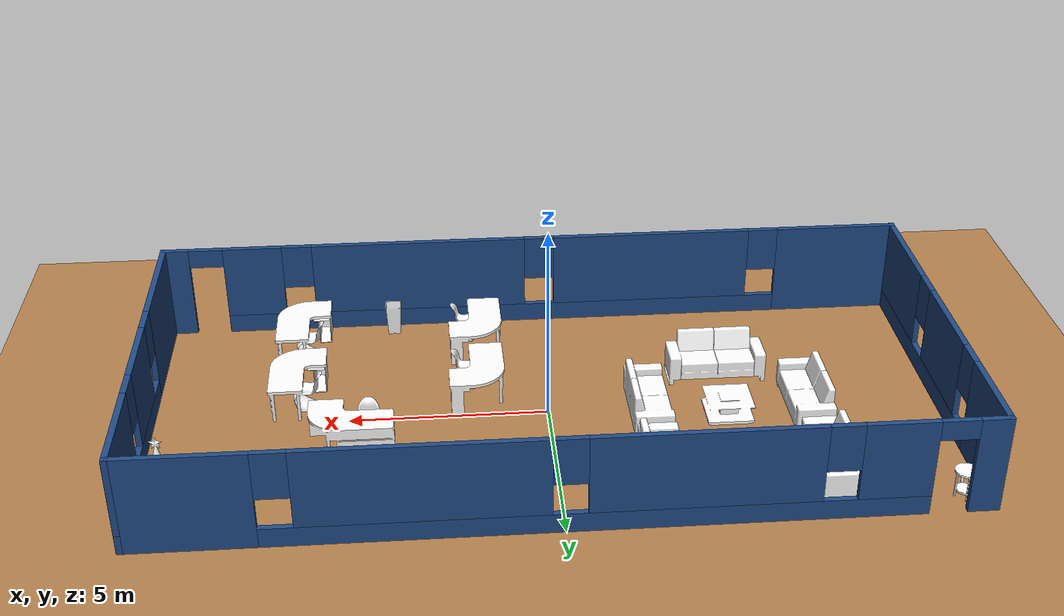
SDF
<sdf version="1.6">
 <world name="default">
  <light name="sun" type="directional">
   <pose>0 0 30 0 -0 0</pose>
   <diffuse>0.8 0.8 0.8 1</diffuse>
   <specular>0.2 0.2 0.2 1</specular>
   <direction>-0.5 0.1 -0.9</direction>
  </light>
  <model name="ground_plane">
   <static>1</static>
   <link name="link">
    <collision name="collision">
     <geometry><plane><normal>0 0 1</normal><size>20 10</size></plane></geometry>
     <surface>
      <contact><collide_bitmask>65535</collide_bitmask></contact>
      <friction><ode><mu>100</mu><mu2>50</mu2></ode></friction>
     </surface>
    </collision>
    <visual name="visual">
     <cast_shadows>0</cast_shadows>
     <geometry><plane><normal>0 0 1</normal><size>20 10</size></plane></geometry>
     <material>
      <script><uri>file://media/materials/scripts/gazebo.material</uri><name>Gazebo/Wood</name></script>
     </material>
    </visual>
   </link>
  </model>
  <model name="desk">
   <pose>0.993359 -4.60158 0 0 -0 1.57785</pose>
   <static>1</static>
   <link name="link">
    <visual name="visual">
     <geometry>
      <mesh><scale>0.788149 0.788149 0.788149</scale><uri>model://desk/meshes/desk.dae</uri></mesh>
     </geometry>
     <material>
      <script>
       <uri>model://desk/materials/textures</uri>
       <uri>model://desk/materials/scripts</uri>
       <name>DeskTexture</name>
      </script>
      <ambient>1 1 1 1</ambient>
      <diffuse>1 1 1 1</diffuse>
      <specular>1 1 1 1</specular>
      <emissive>0 0 0 1</emissive>
     </material>
    </visual>
   </link>
  </model>
  <model name="silladesk">
   <pose>2.29763 -3.32831 0 0 0 -1.36963</pose>
   <static>1</static>
   <link name="link">
    <visual name="visual">
     <geometry>
      <mesh><scale>1.73835 1.73835 1.73835</scale><uri>model://silladesk/meshes/silladesk.dae</uri></mesh>
     </geometry>
     <material>
      <script>
       <uri>model://silladesk/materials/textures</uri>
       <uri>model://silladesk/materials/scripts</uri>
       <name>SilladeskTexture</name>
      </script>
      <ambient>1 1 1 1</ambient>
      <diffuse>1 1 1 1</diffuse>
      <specular>1 1 1 1</specular>
      <emissive>0 0 0 1</emissive>
     </material>
    </visual>
   </link>
  </model>
  <model name="reciclaje">
   <pose>3.66144 -4.27861 0 0 -0 0</pose>
   <static>1</static>
   <link name="link">
    <visual name="visual">
     <geometry>
      <mesh><scale>1.2699 1.2699 1.2699</scale><uri>model://reciclaje/meshes/reciclaje.dae</uri></mesh>
     </geometry>
     <material>
      <script>
       <uri>model://reciclaje/materials/textures</uri>
       <uri>model://reciclaje/materials/scripts</uri>
       <name>ReciclajeTexture</name>
      </script>
      <ambient>1 1 1 1</ambient>
      <diffuse>1 1 1 1</diffuse>
      <specular>1 1 1 1</specular>
      <emissive>0 0 0 1</emissive>
     </material>
    </visual>
   </link>
  </model>
  <model name="arbol">
   <pose>8.22368 4.75667 -0.004271 0 -0 0</pose>
   <static>1</static>
   <link name="link">
    <visual name="visual">
     <geometry>
      <mesh><scale>0.221922 0.221922 0.221922</scale><uri>model://arbol/meshes/arbol.dae</uri></mesh>
     </geometry>
     <material>
      <script>
       <uri>model://arbol/materials/textures</uri>
       <uri>model://arbol/materials/scripts</uri>
       <name>ArbolTexture</name>
      </script>
      <ambient>1 1 1 1</ambient>
      <diffuse>1 1 1 1</diffuse>
      <specular>1 1 1 1</specular>
      <emissive>0 0 0 1</emissive>
     </material>
    </visual>
   </link>
  </model>
  <model name="mesa">
   <pose>-9.35089 4.36935 0 0 -0 0</pose>
   <static>1</static>
   <link name="link">
    <visual name="visual">
     <geometry>
      <mesh><scale>1.51924 1.51924 1.51924</scale><uri>model://mesa/meshes/mesa.dae</uri></mesh>
     </geometry>
     <material>
      <script>
       <uri>model://mesa/materials/textures</uri>
       <uri>model://mesa/materials/scripts</uri>
       <name>MesaTexture</name>
      </script>
      <ambient>1 1 1 1</ambient>
      <diffuse>1 1 1 1</diffuse>
      <specular>1 1 1 1</specular>
      <emissive>0 0 0 1</emissive>
     </material>
    </visual>
   </link>
  </model>
  <model name="centro">
   <pose>-4.50735 0.435197 0 0 -0 0</pose>
   <static>1</static>
   <link name="link">
    <visual name="visual">
     <geometry>
      <mesh><scale>1.15593 1.15593 1.15593</scale><uri>model://centro/meshes/centro.dae</uri></mesh>
     </geometry>
     <material>
      <script>
       <uri>model://centro/materials/textures</uri>
       <uri>model://centro/materials/scripts</uri>
       <name>CentroTexture</name>
      </script>
      <ambient>1 1 1 1</ambient>
      <diffuse>1 1 1 1</diffuse>
      <specular>1 1 1 1</specular>
      <emissive>0 0 0 1</emissive>
     </material>
    </visual>
   </link>
  </model>
  <model name="rycsv_proyecto">
   <pose>-0.004936 0.00977 0 0 -0 0</pose>
   <link name="Wall_0">
    <pose>0 -4.925 0 0 -0 0</pose>
    <visual name="Wall_0_Visual_0">
     <pose>-8.35877 0 1.25 0 -0 0</pose>
     <geometry><box><size>3.28246 0.15 2.5</size></box></geometry>
     <material>
      <script><uri>file://media/materials/scripts/gazebo.material</uri><name>Gazebo/Grey</name></script>
      <ambient>0.12549 0.290196 0.529412 1</ambient>
     </material>
     <meta><layer>0</layer></meta>
    </visual>
    <visual name="Wall_0_Visual_1">
     <pose>9.63399 0 1.25 0 -0 0</pose>
     <geometry><box><size>0.732028 0.15 2.5</size></box></geometry>
     <material>
      <script><uri>file://media/materials/scripts/gazebo.material</uri><name>Gazebo/Grey</name></script>
      <ambient>0.12549 0.290196 0.529412 1</ambient>
     </material>
     <meta><layer>0</layer></meta>
    </visual>
    <visual name="Wall_0_Visual_2">
     <pose>0.825216 0 0.25 0 -0 0</pose>
     <geometry><box><size>15.0855 0.15 0.5</size></box></geometry>
     <material>
      <script><uri>file://media/materials/scripts/gazebo.material</uri><name>Gazebo/Grey</name></script>
      <ambient>0.12549 0.290196 0.529412 1</ambient>
     </material>
     <meta><layer>0</layer></meta>
    </visual>
    <visual name="Wall_0_Visual_3">
     <pose>-3.23192 0 1.5 0 -0 0</pose>
     <geometry><box><size>5.37125 0.15 2</size></box></geometry>
     <material>
      <script><uri>file://media/materials/scripts/gazebo.material</uri><name>Gazebo/Grey</name></script>
      <ambient>0.12549 0.290196 0.529412 1</ambient>
     </material>
     <meta><layer>0</layer></meta>
    </visual>
    <visual name="Wall_0_Visual_4">
     <pose>3.12553 0 1.5 0 -0 0</pose>
     <geometry><box><size>5.74365 0.15 2</size></box></geometry>
     <material>
      <script><uri>file://media/materials/scripts/gazebo.material</uri><name>Gazebo/Grey</name></script>
      <ambient>0.12549 0.290196 0.529412 1</ambient>
     </material>
     <meta><layer>0</layer></meta>
    </visual>
    <visual name="Wall_0_Visual_5">
     <pose>7.58266 0 1.5 0 -0 0</pose>
     <geometry><box><size>1.57062 0.15 2</size></box></geometry>
     <material>
      <script><uri>file://media/materials/scripts/gazebo.material</uri><name>Gazebo/Grey</name></script>
      <ambient>0.12549 0.290196 0.529412 1</ambient>
     </material>
     <meta><layer>0</layer></meta>
    </visual>
    <visual name="Wall_0_Visual_6">
     <pose>-6.31754 0 1.9 0 -0 0</pose>
     <geometry><box><size>0.8 0.15 1.2</size></box></geometry>
     <material>
      <script><uri>file://media/materials/scripts/gazebo.material</uri><name>Gazebo/Grey</name></script>
      <ambient>0.12549 0.290196 0.529412 1</ambient>
     </material>
     <meta><layer>0</layer></meta>
    </visual>
    <visual name="Wall_0_Visual_7">
     <pose>-0.146295 0 1.9 0 -0 0</pose>
     <geometry><box><size>0.8 0.15 1.2</size></box></geometry>
     <material>
      <script><uri>file://media/materials/scripts/gazebo.material</uri><name>Gazebo/Grey</name></script>
      <ambient>0.12549 0.290196 0.529412 1</ambient>
     </material>
     <meta><layer>0</layer></meta>
    </visual>
    <visual name="Wall_0_Visual_8">
     <pose>6.39735 0 1.9 0 -0 0</pose>
     <geometry><box><size>0.8 0.15 1.2</size></box></geometry>
     <material>
      <script><uri>file://media/materials/scripts/gazebo.material</uri><name>Gazebo/Grey</name></script>
      <ambient>0.12549 0.290196 0.529412 1</ambient>
     </material>
     <meta><layer>0</layer></meta>
    </visual>
    <visual name="Wall_0_Visual_9">
     <pose>8.81797 0 2.25 0 -0 0</pose>
     <geometry><box><size>0.9 0.15 0.5</size></box></geometry>
     <material>
      <script><uri>file://media/materials/scripts/gazebo.material</uri><name>Gazebo/Grey</name></script>
      <ambient>0.12549 0.290196 0.529412 1</ambient>
     </material>
     <meta><layer>0</layer></meta>
    </visual>
   </link>
   <link name="Wall_1">
    <pose>9.925 0 0 0 -0 1.5708</pose>
    <visual name="Wall_1_Visual_0">
     <pose>-3.29565 0 1.25 0 -0 0</pose>
     <geometry><box><size>3.40869 0.15 2.5</size></box></geometry>
     <material>
      <script><uri>file://media/materials/scripts/gazebo.material</uri><name>Gazebo/Grey</name></script>
      <ambient>0.12549 0.290196 0.529412 1</ambient>
     </material>
     <meta><layer>0</layer></meta>
    </visual>
    <visual name="Wall_1_Visual_1">
     <pose>1.70435 0 0.25 0 -0 0</pose>
     <geometry><box><size>6.59131 0.15 0.5</size></box></geometry>
     <material>
      <script><uri>file://media/materials/scripts/gazebo.material</uri><name>Gazebo/Grey</name></script>
      <ambient>0.12549 0.290196 0.529412 1</ambient>
     </material>
     <meta><layer>0</layer></meta>
    </visual>
    <visual name="Wall_1_Visual_2">
     <pose>0.324902 0 1.5 0 -0 0</pose>
     <geometry><box><size>2.23242 0.15 2</size></box></geometry>
     <material>
      <script><uri>file://media/materials/scripts/gazebo.material</uri><name>Gazebo/Grey</name></script>
      <ambient>0.12549 0.290196 0.529412 1</ambient>
     </material>
     <meta><layer>0</layer></meta>
    </visual>
    <visual name="Wall_1_Visual_3">
     <pose>3.62056 0 1.5 0 -0 0</pose>
     <geometry><box><size>2.75889 0.15 2</size></box></geometry>
     <material>
      <script><uri>file://media/materials/scripts/gazebo.material</uri><name>Gazebo/Grey</name></script>
      <ambient>0.12549 0.290196 0.529412 1</ambient>
     </material>
     <meta><layer>0</layer></meta>
    </visual>
    <visual name="Wall_1_Visual_4">
     <pose>-1.19131 0 1.9 0 -0 0</pose>
     <geometry><box><size>0.8 0.15 1.2</size></box></geometry>
     <material>
      <script><uri>file://media/materials/scripts/gazebo.material</uri><name>Gazebo/Grey</name></script>
      <ambient>0.12549 0.290196 0.529412 1</ambient>
     </material>
     <meta><layer>0</layer></meta>
    </visual>
    <visual name="Wall_1_Visual_5">
     <pose>1.84111 0 1.9 0 -0 0</pose>
     <geometry><box><size>0.8 0.15 1.2</size></box></geometry>
     <material>
      <script><uri>file://media/materials/scripts/gazebo.material</uri><name>Gazebo/Grey</name></script>
      <ambient>0.12549 0.290196 0.529412 1</ambient>
     </material>
     <meta><layer>0</layer></meta>
    </visual>
   </link>
   <link name="Wall_2">
    <pose>0 4.925 0 0 -0 3.14159</pose>
    <visual name="Wall_2_Visual_0">
     <pose>-8.43858 0 1.25 0 -0 0</pose>
     <geometry><box><size>3.12284 0.15 2.5</size></box></geometry>
     <material>
      <script><uri>file://media/materials/scripts/gazebo.material</uri><name>Gazebo/Grey</name></script>
      <ambient>0.12549 0.290196 0.529412 1</ambient>
     </material>
     <meta><layer>0</layer></meta>
    </visual>
    <visual name="Wall_2_Visual_1">
     <pose>9.62068 0 1.25 0 -0 0</pose>
     <geometry><box><size>0.758641 0.15 2.5</size></box></geometry>
     <material>
      <script><uri>file://media/materials/scripts/gazebo.material</uri><name>Gazebo/Grey</name></script>
      <ambient>0.12549 0.290196 0.529412 1</ambient>
     </material>
     <meta><layer>0</layer></meta>
    </visual>
    <visual name="Wall_2_Visual_2">
     <pose>0.732102 0 0.25 0 -0 0</pose>
     <geometry><box><size>15.2185 0.15 0.5</size></box></geometry>
     <material>
      <script><uri>file://media/materials/scripts/gazebo.material</uri><name>Gazebo/Grey</name></script>
      <ambient>0.12549 0.290196 0.529412 1</ambient>
     </material>
     <meta><layer>0</layer></meta>
    </visual>
    <visual name="Wall_2_Visual_3">
     <pose>-3.19203 0 1.5 0 -0 0</pose>
     <geometry><box><size>5.77025 0.15 2</size></box></geometry>
     <material>
      <script><uri>file://media/materials/scripts/gazebo.material</uri><name>Gazebo/Grey</name></script>
      <ambient>0.12549 0.290196 0.529412 1</ambient>
     </material>
     <meta><layer>0</layer></meta>
    </visual>
    <visual name="Wall_2_Visual_4">
     <pose>3.16542 0 1.5 0 -0 0</pose>
     <geometry><box><size>5.34465 0.15 2</size></box></geometry>
     <material>
      <script><uri>file://media/materials/scripts/gazebo.material</uri><name>Gazebo/Grey</name></script>
      <ambient>0.12549 0.290196 0.529412 1</ambient>
     </material>
     <meta><layer>0</layer></meta>
    </visual>
    <visual name="Wall_2_Visual_5">
     <pose>7.48955 0 1.5 0 -0 0</pose>
     <geometry><box><size>1.70362 0.15 2</size></box></geometry>
     <material>
      <script><uri>file://media/materials/scripts/gazebo.material</uri><name>Gazebo/Grey</name></script>
      <ambient>0.12549 0.290196 0.529412 1</ambient>
     </material>
     <meta><layer>0</layer></meta>
    </visual>
    <visual name="Wall_2_Visual_6">
     <pose>-6.47715 0 1.9 0 -0 0</pose>
     <geometry><box><size>0.8 0.15 1.2</size></box></geometry>
     <material>
      <script><uri>file://media/materials/scripts/gazebo.material</uri><name>Gazebo/Grey</name></script>
      <ambient>0.12549 0.290196 0.529412 1</ambient>
     </material>
     <meta><layer>0</layer></meta>
    </visual>
    <visual name="Wall_2_Visual_7">
     <pose>0.093094 0 1.9 0 -0 0</pose>
     <geometry><box><size>0.8 0.15 1.2</size></box></geometry>
     <material>
      <script><uri>file://media/materials/scripts/gazebo.material</uri><name>Gazebo/Grey</name></script>
      <ambient>0.12549 0.290196 0.529412 1</ambient>
     </material>
     <meta><layer>0</layer></meta>
    </visual>
    <visual name="Wall_2_Visual_8">
     <pose>6.23774 0 1.9 0 -0 0</pose>
     <geometry><box><size>0.8 0.15 1.2</size></box></geometry>
     <material>
      <script><uri>file://media/materials/scripts/gazebo.material</uri><name>Gazebo/Grey</name></script>
      <ambient>0.12549 0.290196 0.529412 1</ambient>
     </material>
     <meta><layer>0</layer></meta>
    </visual>
    <visual name="Wall_2_Visual_9">
     <pose>8.79136 0 2.25 0 -0 0</pose>
     <geometry><box><size>0.9 0.15 0.5</size></box></geometry>
     <material>
      <script><uri>file://media/materials/scripts/gazebo.material</uri><name>Gazebo/Grey</name></script>
      <ambient>0.12549 0.290196 0.529412 1</ambient>
     </material>
     <meta><layer>0</layer></meta>
    </visual>
   </link>
   <link name="Wall_3">
    <pose>-9.925 0 0 0 -0 -1.5708</pose>
    <visual name="Wall_3_Visual_0">
     <pose>-3.74026 0 1.25 0 -0 0</pose>
     <geometry><box><size>2.51948 0.15 2.5</size></box></geometry>
     <material>
      <script><uri>file://media/materials/scripts/gazebo.material</uri><name>Gazebo/Grey</name></script>
      <ambient>0.12549 0.290196 0.529412 1</ambient>
     </material>
     <meta><layer>0</layer></meta>
    </visual>
    <visual name="Wall_3_Visual_1">
     <pose>1.25974 0 0.25 0 -0 0</pose>
     <geometry><box><size>7.48052 0.15 0.5</size></box></geometry>
     <material>
      <script><uri>file://media/materials/scripts/gazebo.material</uri><name>Gazebo/Grey</name></script>
      <ambient>0.12549 0.290196 0.529412 1</ambient>
     </material>
     <meta><layer>0</layer></meta>
    </visual>
    <visual name="Wall_3_Visual_2">
     <pose>-0.311602 0 1.5 0 -0 0</pose>
     <geometry><box><size>2.73783 0.15 2</size></box></geometry>
     <material>
      <script><uri>file://media/materials/scripts/gazebo.material</uri><name>Gazebo/Grey</name></script>
      <ambient>0.12549 0.290196 0.529412 1</ambient>
     </material>
     <meta><layer>0</layer></meta>
    </visual>
    <visual name="Wall_3_Visual_3">
     <pose>3.42866 0 1.5 0 -0 0</pose>
     <geometry><box><size>3.14269 0.15 2</size></box></geometry>
     <material>
      <script><uri>file://media/materials/scripts/gazebo.material</uri><name>Gazebo/Grey</name></script>
      <ambient>0.12549 0.290196 0.529412 1</ambient>
     </material>
     <meta><layer>0</layer></meta>
    </visual>
    <visual name="Wall_3_Visual_4">
     <pose>-2.08052 0 1.9 0 -0 0</pose>
     <geometry><box><size>0.8 0.15 1.2</size></box></geometry>
     <material>
      <script><uri>file://media/materials/scripts/gazebo.material</uri><name>Gazebo/Grey</name></script>
      <ambient>0.12549 0.290196 0.529412 1</ambient>
     </material>
     <meta><layer>0</layer></meta>
    </visual>
    <visual name="Wall_3_Visual_5">
     <pose>1.45731 0 1.9 0 -0 0</pose>
     <geometry><box><size>0.8 0.15 1.2</size></box></geometry>
     <material>
      <script><uri>file://media/materials/scripts/gazebo.material</uri><name>Gazebo/Grey</name></script>
      <ambient>0.12549 0.290196 0.529412 1</ambient>
     </material>
     <meta><layer>0</layer></meta>
    </visual>
   </link>
   <static>1</static>
  </model>
  <model name="sofa_clone_2">
   <pose>-3.24963 -1.96759 0 0 0 -3.13964</pose>
   <static>1</static>
   <link name="link">
    <visual name="visual">
     <geometry>
      <mesh><scale>1.47171 1.47171 1.47171</scale><uri>model://sofa/meshes/sofa.dae</uri></mesh>
     </geometry>
     <material>
      <script>
       <uri>model://sofa/materials/textures</uri>
       <uri>model://sofa/materials/scripts</uri>
       <name>SofaTexture</name>
      </script>
      <ambient>1 1 1 1</ambient>
      <diffuse>1 1 1 1</diffuse>
      <specular>1 1 1 1</specular>
      <emissive>0 0 0 1</emissive>
     </material>
    </visual>
   </link>
  </model>
  <model name="sofa_clone_2_clone">
   <pose>-6.96137 -0.836862 0 0 -0 1.57227</pose>
   <static>1</static>
   <link name="link">
    <visual name="visual">
     <geometry>
      <mesh><scale>1.47171 1.47171 1.47171</scale><uri>model://sofa/meshes/sofa.dae</uri></mesh>
     </geometry>
     <material>
      <script>
       <uri>model://sofa/materials/textures</uri>
       <uri>model://sofa/materials/scripts</uri>
       <name>SofaTexture</name>
      </script>
      <ambient>1 1 1 1</ambient>
      <diffuse>1 1 1 1</diffuse>
      <specular>1 1 1 1</specular>
      <emissive>0 0 0 1</emissive>
     </material>
    </visual>
   </link>
  </model>
  <model name="sofa_clone_2_clone_0">
   <pose>-2.01047 1.64623 0 0 0 -1.57114</pose>
   <static>1</static>
   <link name="link">
    <visual name="visual">
     <geometry>
      <mesh><scale>1.47171 1.47171 1.47171</scale><uri>model://sofa/meshes/sofa.dae</uri></mesh>
     </geometry>
     <material>
      <script>
       <uri>model://sofa/materials/textures</uri>
       <uri>model://sofa/materials/scripts</uri>
       <name>SofaTexture</name>
      </script>
      <ambient>1 1 1 1</ambient>
      <diffuse>1 1 1 1</diffuse>
      <specular>1 1 1 1</specular>
      <emissive>0 0 0 1</emissive>
     </material>
    </visual>
   </link>
  </model>
  <model name="sofa_clone_2_clone_clone">
   <pose>-6.97134 1.95488 0 0 -0 1.57227</pose>
   <static>1</static>
   <link name="link">
    <visual name="visual">
     <geometry>
      <mesh><scale>1.47171 1.47171 1.47171</scale><uri>model://sofa/meshes/sofa.dae</uri></mesh>
     </geometry>
     <material>
      <script>
       <uri>model://sofa/materials/textures</uri>
       <uri>model://sofa/materials/scripts</uri>
       <name>SofaTexture</name>
      </script>
      <ambient>1 1 1 1</ambient>
      <diffuse>1 1 1 1</diffuse>
      <specular>1 1 1 1</specular>
      <emissive>0 0 0 1</emissive>
     </material>
    </visual>
   </link>
  </model>
  <model name="sofa_clone_2_clone_0_clone">
   <pose>-2.00305 4.40989 0 0 0 -1.57114</pose>
   <static>1</static>
   <link name="link">
    <visual name="visual">
     <geometry>
      <mesh><scale>1.47171 1.47171 1.47171</scale><uri>model://sofa/meshes/sofa.dae</uri></mesh>
     </geometry>
     <material>
      <script>
       <uri>model://sofa/materials/textures</uri>
       <uri>model://sofa/materials/scripts</uri>
       <name>SofaTexture</name>
      </script>
      <ambient>1 1 1 1</ambient>
      <diffuse>1 1 1 1</diffuse>
      <specular>1 1 1 1</specular>
      <emissive>0 0 0 1</emissive>
     </material>
    </visual>
   </link>
  </model>
  <model name="centro_clone">
   <pose>-4.47528 2.96779 0 0 -0 0</pose>
   <static>1</static>
   <link name="link">
    <visual name="visual">
     <geometry>
      <mesh><scale>1.17355 1.17355 1.17355</scale><uri>model://centro/meshes/centro.dae</uri></mesh>
     </geometry>
     <material>
      <script>
       <uri>model://centro/materials/textures</uri>
       <uri>model://centro/materials/scripts</uri>
       <name>CentroTexture</name>
      </script>
      <ambient>1 1 1 1</ambient>
      <diffuse>1 1 1 1</diffuse>
      <specular>1 1 1 1</specular>
      <emissive>0 0 0 1</emissive>
     </material>
    </visual>
   </link>
  </model>
  <model name="desk_clone">
   <pose>1.05486 -2.15209 0 0 -0 1.57785</pose>
   <static>1</static>
   <link name="link">
    <visual name="visual">
     <geometry>
      <mesh><scale>0.788149 0.788149 0.788149</scale><uri>model://desk/meshes/desk.dae</uri></mesh>
     </geometry>
     <material>
      <script>
       <uri>model://desk/materials/textures</uri>
       <uri>model://desk/materials/scripts</uri>
       <name>DeskTexture</name>
      </script>
      <ambient>1 1 1 1</ambient>
      <diffuse>1 1 1 1</diffuse>
      <specular>1 1 1 1</specular>
      <emissive>0 0 0 1</emissive>
     </material>
    </visual>
   </link>
  </model>
  <model name="desk_clone_0">
   <pose>6.95628 -2.68746 0 0 0 -1.56333</pose>
   <static>1</static>
   <link name="link">
    <visual name="visual">
     <geometry>
      <mesh><scale>0.788149 0.788149 0.788149</scale><uri>model://desk/meshes/desk.dae</uri></mesh>
     </geometry>
     <material>
      <script>
       <uri>model://desk/materials/textures</uri>
       <uri>model://desk/materials/scripts</uri>
       <name>DeskTexture</name>
      </script>
      <ambient>1 1 1 1</ambient>
      <diffuse>1 1 1 1</diffuse>
      <specular>1 1 1 1</specular>
      <emissive>0 0 0 1</emissive>
     </material>
    </visual>
   </link>
  </model>
  <model name="desk_clone_1">
   <pose>6.98537 -0.120367 0 0 0 -1.56087</pose>
   <static>1</static>
   <link name="link">
    <visual name="visual">
     <geometry>
      <mesh><scale>0.788149 0.788149 0.788149</scale><uri>model://desk/meshes/desk.dae</uri></mesh>
     </geometry>
     <material>
      <script>
       <uri>model://desk/materials/textures</uri>
       <uri>model://desk/materials/scripts</uri>
       <name>DeskTexture</name>
      </script>
      <ambient>1 1 1 1</ambient>
      <diffuse>1 1 1 1</diffuse>
      <specular>1 1 1 1</specular>
      <emissive>0 0 0 1</emissive>
     </material>
    </visual>
   </link>
  </model>
  <model name="desk_clone_2">
   <pose>3.84868 1.72973 0 0 -0 0.001087</pose>
   <static>1</static>
   <link name="link">
    <visual name="visual">
     <geometry>
      <mesh><scale>0.788149 0.788149 0.788149</scale><uri>model://desk/meshes/desk.dae</uri></mesh>
     </geometry>
     <material>
      <script>
       <uri>model://desk/materials/textures</uri>
       <uri>model://desk/materials/scripts</uri>
       <name>DeskTexture</name>
      </script>
      <ambient>1 1 1 1</ambient>
      <diffuse>1 1 1 1</diffuse>
      <specular>1 1 1 1</specular>
      <emissive>0 0 0 1</emissive>
     </material>
    </visual>
   </link>
  </model>
  <model name="silladesk_clone">
   <pose>2.34757 -0.860327 0 0 0 -1.36963</pose>
   <static>1</static>
   <link name="link">
    <visual name="visual">
     <geometry>
      <mesh><scale>1.73835 1.73835 1.73835</scale><uri>model://silladesk/meshes/silladesk.dae</uri></mesh>
     </geometry>
     <material>
      <script>
       <uri>model://silladesk/materials/textures</uri>
       <uri>model://silladesk/materials/scripts</uri>
       <name>SilladeskTexture</name>
      </script>
      <ambient>1 1 1 1</ambient>
      <diffuse>1 1 1 1</diffuse>
      <specular>1 1 1 1</specular>
      <emissive>0 0 0 1</emissive>
     </material>
    </visual>
   </link>
  </model>
  <model name="silladesk_clone_0">
   <pose>5.11846 0.553714 0 0 0 -2.94272</pose>
   <static>1</static>
   <link name="link">
    <visual name="visual">
     <geometry>
      <mesh><scale>1.73835 1.73835 1.73835</scale><uri>model://silladesk/meshes/silladesk.dae</uri></mesh>
     </geometry>
     <material>
      <script>
       <uri>model://silladesk/materials/textures</uri>
       <uri>model://silladesk/materials/scripts</uri>
       <name>SilladeskTexture</name>
      </script>
      <ambient>1 1 1 1</ambient>
      <diffuse>1 1 1 1</diffuse>
      <specular>1 1 1 1</specular>
      <emissive>0 0 0 1</emissive>
     </material>
    </visual>
   </link>
  </model>
  <model name="silladesk_clone_1">
   <pose>5.66805 -1.37505 0 0 -0 1.74473</pose>
   <static>1</static>
   <link name="link">
    <visual name="visual">
     <geometry>
      <mesh><scale>1.73835 1.73835 1.73835</scale><uri>model://silladesk/meshes/silladesk.dae</uri></mesh>
     </geometry>
     <material>
      <script>
       <uri>model://silladesk/materials/textures</uri>
       <uri>model://silladesk/materials/scripts</uri>
       <name>SilladeskTexture</name>
      </script>
      <ambient>1 1 1 1</ambient>
      <diffuse>1 1 1 1</diffuse>
      <specular>1 1 1 1</specular>
      <emissive>0 0 0 1</emissive>
     </material>
    </visual>
   </link>
  </model>
  <model name="silladesk_clone_1_clone">
   <pose>5.72004 -3.9568 0 0 -0 1.74473</pose>
   <static>1</static>
   <link name="link">
    <visual name="visual">
     <geometry>
      <mesh><scale>1.73835 1.73835 1.73835</scale><uri>model://silladesk/meshes/silladesk.dae</uri></mesh>
     </geometry>
     <material>
      <script>
       <uri>model://silladesk/materials/textures</uri>
       <uri>model://silladesk/materials/scripts</uri>
       <name>SilladeskTexture</name>
      </script>
      <ambient>1 1 1 1</ambient>
      <diffuse>1 1 1 1</diffuse>
      <specular>1 1 1 1</specular>
      <emissive>0 0 0 1</emissive>
     </material>
    </visual>
   </link>
  </model>
 </world>
</sdf>
